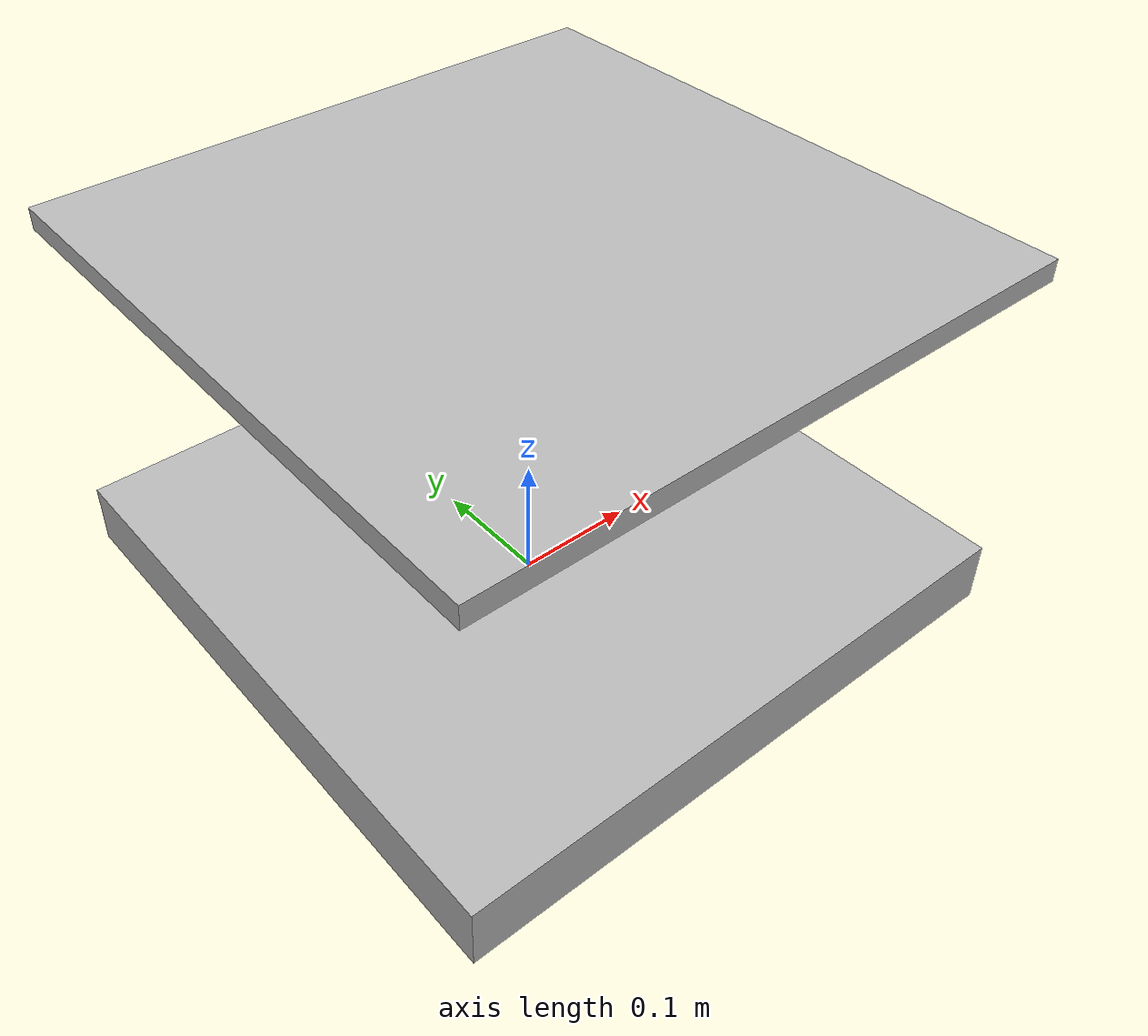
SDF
<?xml version="1.0"?>
<sdf version="1.4">
    <model name="apriltag_support_horizontal">
        <pose>0 0 0 0 0 0</pose>
        <static>true</static>
        <link name="apriltag_support_horizontal_body">
            <visual name="visual">
                <geometry>
                    <mesh>
                        <uri>model://apriltag_support_horizontal/visual.osgb</uri>
                    </mesh>
                </geometry>
            </visual>
            <collision name="collision">
                <geometry>
                    <mesh>
                        <uri>model://apriltag_support_horizontal/collision.stl</uri>
                    </mesh>
                </geometry>
            </collision>
            <inertial>
                <pose>0 0 -1 0 0 0</pose>
                <inertia>
                    <ixx>0.0</ixx>
                    <ixy>0</ixy>
                    <ixz>0.0</ixz>
                    <iyy>0.0</iyy>
                    <iyz>0</iyz>
                    <izz>0.0</izz>
                </inertia>
                <mass>1.0</mass>
            </inertial>
        </link>
    </model>
</sdf>
